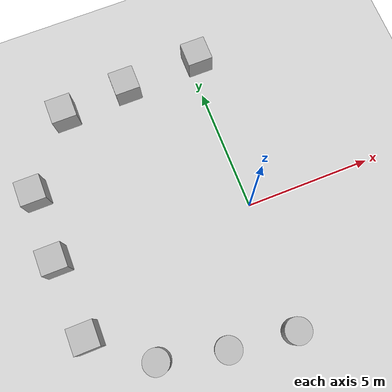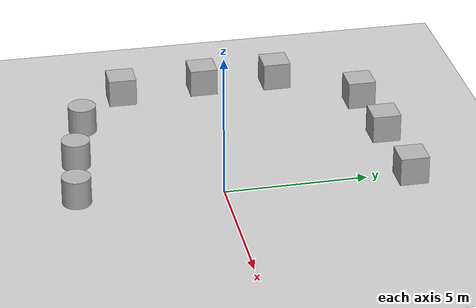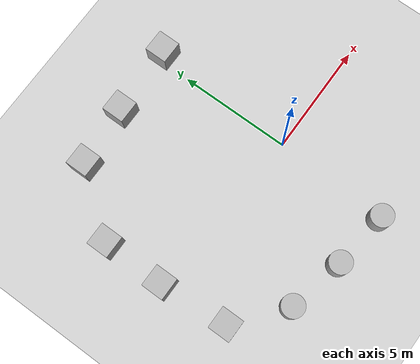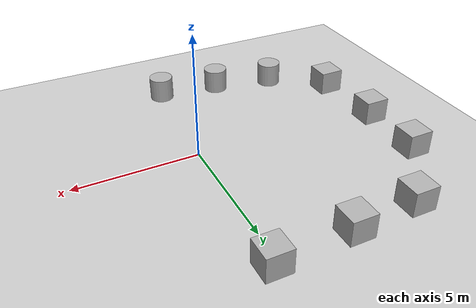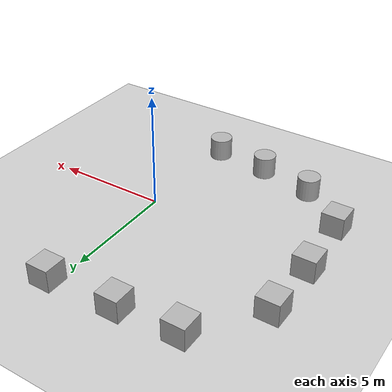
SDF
<sdf version='1.9'>
  <world name='simple'>
    <physics name='1ms' type='ignored'>
      <max_step_size>0.001</max_step_size>
      <real_time_factor>1</real_time_factor>
      <real_time_update_rate>1000</real_time_update_rate>
    </physics>
    <plugin name='gz::sim::systems::Physics' filename='ignition-gazebo-physics-system'/>
    <plugin name='gz::sim::systems::UserCommands' filename='ignition-gazebo-user-commands-system'/>
    <plugin name='gz::sim::systems::SceneBroadcaster' filename='ignition-gazebo-scene-broadcaster-system'/>
    <plugin name='gz::sim::systems::Contact' filename='ignition-gazebo-contact-system'/>
    <plugin name='gz::sim::systems::Sensors' filename='ignition-gazebo-sensors-system'>
      <render_engine>ogre2</render_engine>
    </plugin>
    <gravity>0 0 -9.8</gravity>
    <magnetic_field>6e-06 2.3e-05 -4.2e-05</magnetic_field>
    <atmosphere type='adiabatic'/>
    <scene>
      <ambient>0.4 0.4 0.4 1</ambient>
      <background>0.7 0.7 0.7 1</background>
      <shadows>true</shadows>
    </scene>
    <model name='ground_plane'>
      <static>true</static>
      <link name='link'>
        <collision name='collision'>
          <geometry>
            <plane>
              <normal>0 0 1</normal>
              <size>100 100</size>
            </plane>
          </geometry>
          <surface>
            <friction>
              <ode/>
            </friction>
            <bounce/>
            <contact/>
          </surface>
        </collision>
        <visual name='visual'>
          <geometry>
            <plane>
              <normal>0 0 1</normal>
              <size>100 100</size>
            </plane>
          </geometry>
          <material>
            <ambient>0.8 0.8 0.8 1</ambient>
            <diffuse>0.8 0.8 0.8 1</diffuse>
            <specular>0.8 0.8 0.8 1</specular>
          </material>
        </visual>
        <pose>0 0 0 0 -0 0</pose>
        <inertial>
          <pose>0 0 0 0 -0 0</pose>
          <mass>1</mass>
          <inertia>
            <ixx>1</ixx>
            <ixy>0</ixy>
            <ixz>0</ixz>
            <iyy>1</iyy>
            <iyz>0</iyz>
            <izz>1</izz>
          </inertia>
        </inertial>
        <enable_wind>false</enable_wind>
      </link>
      <pose>0 0 0 0 -0 0</pose>
      <self_collide>false</self_collide>
    </model>
    <model name='box'>
      <pose>0.302278 6.46713 0.5 0 -0 0</pose>
      <link name='box_link'>
        <inertial>
          <inertia>
            <ixx>0.16666</ixx>
            <ixy>0</ixy>
            <ixz>0</ixz>
            <iyy>0.16666</iyy>
            <iyz>0</iyz>
            <izz>0.16666</izz>
          </inertia>
          <mass>1</mass>
          <pose>0 0 0 0 -0 0</pose>
        </inertial>
        <collision name='box_collision'>
          <geometry>
            <box>
              <size>1 1 1</size>
            </box>
          </geometry>
          <surface>
            <friction>
              <ode/>
            </friction>
            <bounce/>
            <contact/>
          </surface>
        </collision>
        <visual name='box_visual'>
          <geometry>
            <box>
              <size>1 1 1</size>
            </box>
          </geometry>
          <material>
            <ambient>0.3 0.3 0.3 1</ambient>
            <diffuse>0.7 0.7 0.7 1</diffuse>
            <specular>1 1 1 1</specular>
          </material>
        </visual>
        <pose>0 0 0 0 -0 0</pose>
        <enable_wind>false</enable_wind>
      </link>
      <static>false</static>
      <self_collide>false</self_collide>
    </model>
    <model name='box_0'>
      <pose>-2.81984 6.3243 0.5 0 -0 0</pose>
      <link name='box_link'>
        <inertial>
          <inertia>
            <ixx>0.16666</ixx>
            <ixy>0</ixy>
            <ixz>0</ixz>
            <iyy>0.16666</iyy>
            <iyz>0</iyz>
            <izz>0.16666</izz>
          </inertia>
          <mass>1</mass>
          <pose>0 0 0 0 -0 0</pose>
        </inertial>
        <collision name='box_collision'>
          <geometry>
            <box>
              <size>1 1 1</size>
            </box>
          </geometry>
          <surface>
            <friction>
              <ode/>
            </friction>
            <bounce/>
            <contact/>
          </surface>
        </collision>
        <visual name='box_visual'>
          <geometry>
            <box>
              <size>1 1 1</size>
            </box>
          </geometry>
          <material>
            <ambient>0.3 0.3 0.3 1</ambient>
            <diffuse>0.7 0.7 0.7 1</diffuse>
            <specular>1 1 1 1</specular>
          </material>
        </visual>
        <pose>0 0 0 0 -0 0</pose>
        <enable_wind>false</enable_wind>
      </link>
      <static>false</static>
      <self_collide>false</self_collide>
    </model>
    <model name='box_1'>
      <pose>-5.5003 6.10691 0.5 0 -0 0</pose>
      <link name='box_link'>
        <inertial>
          <inertia>
            <ixx>0.16666</ixx>
            <ixy>0</ixy>
            <ixz>0</ixz>
            <iyy>0.16666</iyy>
            <iyz>0</iyz>
            <izz>0.16666</izz>
          </inertia>
          <mass>1</mass>
          <pose>0 0 0 0 -0 0</pose>
        </inertial>
        <collision name='box_collision'>
          <geometry>
            <box>
              <size>1 1 1</size>
            </box>
          </geometry>
          <surface>
            <friction>
              <ode/>
            </friction>
            <bounce/>
            <contact/>
          </surface>
        </collision>
        <visual name='box_visual'>
          <geometry>
            <box>
              <size>1 1 1</size>
            </box>
          </geometry>
          <material>
            <ambient>0.3 0.3 0.3 1</ambient>
            <diffuse>0.7 0.7 0.7 1</diffuse>
            <specular>1 1 1 1</specular>
          </material>
        </visual>
        <pose>0 0 0 0 -0 0</pose>
        <enable_wind>false</enable_wind>
      </link>
      <static>false</static>
      <self_collide>false</self_collide>
    </model>
    <model name='box_2'>
      <pose>-7.58545 3.38122 0.5 0 -0 0</pose>
      <link name='box_link'>
        <inertial>
          <inertia>
            <ixx>0.16666</ixx>
            <ixy>0</ixy>
            <ixz>0</ixz>
            <iyy>0.16666</iyy>
            <iyz>0</iyz>
            <izz>0.16666</izz>
          </inertia>
          <mass>1</mass>
          <pose>0 0 0 0 -0 0</pose>
        </inertial>
        <collision name='box_collision'>
          <geometry>
            <box>
              <size>1 1 1</size>
            </box>
          </geometry>
          <surface>
            <friction>
              <ode/>
            </friction>
            <bounce/>
            <contact/>
          </surface>
        </collision>
        <visual name='box_visual'>
          <geometry>
            <box>
              <size>1 1 1</size>
            </box>
          </geometry>
          <material>
            <ambient>0.3 0.3 0.3 1</ambient>
            <diffuse>0.7 0.7 0.7 1</diffuse>
            <specular>1 1 1 1</specular>
          </material>
        </visual>
        <pose>0 0 0 0 -0 0</pose>
        <enable_wind>false</enable_wind>
      </link>
      <static>false</static>
      <self_collide>false</self_collide>
    </model>
    <model name='box_3'>
      <pose>-7.6242 0.624547 0.5 0 -0 0</pose>
      <link name='box_link'>
        <inertial>
          <inertia>
            <ixx>0.16666</ixx>
            <ixy>0</ixy>
            <ixz>0</ixz>
            <iyy>0.16666</iyy>
            <iyz>0</iyz>
            <izz>0.16666</izz>
          </inertia>
          <mass>1</mass>
          <pose>0 0 0 0 -0 0</pose>
        </inertial>
        <collision name='box_collision'>
          <geometry>
            <box>
              <size>1 1 1</size>
            </box>
          </geometry>
          <surface>
            <friction>
              <ode/>
            </friction>
            <bounce/>
            <contact/>
          </surface>
        </collision>
        <visual name='box_visual'>
          <geometry>
            <box>
              <size>1 1 1</size>
            </box>
          </geometry>
          <material>
            <ambient>0.3 0.3 0.3 1</ambient>
            <diffuse>0.7 0.7 0.7 1</diffuse>
            <specular>1 1 1 1</specular>
          </material>
        </visual>
        <pose>0 0 0 0 -0 0</pose>
        <enable_wind>false</enable_wind>
      </link>
      <static>false</static>
      <self_collide>false</self_collide>
    </model>
    <model name='box_4'>
      <pose>-7.40752 -2.43421 0.5 0 -0 0</pose>
      <link name='box_link'>
        <inertial>
          <inertia>
            <ixx>0.16666</ixx>
            <ixy>0</ixy>
            <ixz>0</ixz>
            <iyy>0.16666</iyy>
            <iyz>0</iyz>
            <izz>0.16666</izz>
          </inertia>
          <mass>1</mass>
          <pose>0 0 0 0 -0 0</pose>
        </inertial>
        <collision name='box_collision'>
          <geometry>
            <box>
              <size>1 1 1</size>
            </box>
          </geometry>
          <surface>
            <friction>
              <ode/>
            </friction>
            <bounce/>
            <contact/>
          </surface>
        </collision>
        <visual name='box_visual'>
          <geometry>
            <box>
              <size>1 1 1</size>
            </box>
          </geometry>
          <material>
            <ambient>0.3 0.3 0.3 1</ambient>
            <diffuse>0.7 0.7 0.7 1</diffuse>
            <specular>1 1 1 1</specular>
          </material>
        </visual>
        <pose>0 0 0 0 -0 0</pose>
        <enable_wind>false</enable_wind>
      </link>
      <static>false</static>
      <self_collide>false</self_collide>
    </model>
    <model name='cylinder'>
      <pose>-5.31176 -4.14538 0.5 0 -0 0</pose>
      <link name='cylinder_link'>
        <inertial>
          <inertia>
            <ixx>0.14580000000000001</ixx>
            <ixy>0</ixy>
            <ixz>0</ixz>
            <iyy>0.14580000000000001</iyy>
            <iyz>0</iyz>
            <izz>0.125</izz>
          </inertia>
          <mass>1</mass>
          <pose>0 0 0 0 -0 0</pose>
        </inertial>
        <collision name='cylinder_collision'>
          <geometry>
            <cylinder>
              <radius>0.5</radius>
              <length>1</length>
            </cylinder>
          </geometry>
          <surface>
            <friction>
              <ode/>
            </friction>
            <bounce/>
            <contact/>
          </surface>
        </collision>
        <visual name='cylinder_visual'>
          <geometry>
            <cylinder>
              <radius>0.5</radius>
              <length>1</length>
            </cylinder>
          </geometry>
          <material>
            <ambient>0.3 0.3 0.3 1</ambient>
            <diffuse>0.7 0.7 0.7 1</diffuse>
            <specular>1 1 1 1</specular>
          </material>
        </visual>
        <pose>0 0 0 0 -0 0</pose>
        <enable_wind>false</enable_wind>
      </link>
      <static>false</static>
      <self_collide>false</self_collide>
    </model>
    <model name='cylinder_0'>
      <pose>-2.81984 -4.69308 0.5 0 -0 0</pose>
      <link name='cylinder_link'>
        <inertial>
          <inertia>
            <ixx>0.14580000000000001</ixx>
            <ixy>0</ixy>
            <ixz>0</ixz>
            <iyy>0.14580000000000001</iyy>
            <iyz>0</iyz>
            <izz>0.125</izz>
          </inertia>
          <mass>1</mass>
          <pose>0 0 0 0 -0 0</pose>
        </inertial>
        <collision name='cylinder_collision'>
          <geometry>
            <cylinder>
              <radius>0.5</radius>
              <length>1</length>
            </cylinder>
          </geometry>
          <surface>
            <friction>
              <ode/>
            </friction>
            <bounce/>
            <contact/>
          </surface>
        </collision>
        <visual name='cylinder_visual'>
          <geometry>
            <cylinder>
              <radius>0.5</radius>
              <length>1</length>
            </cylinder>
          </geometry>
          <material>
            <ambient>0.3 0.3 0.3 1</ambient>
            <diffuse>0.7 0.7 0.7 1</diffuse>
            <specular>1 1 1 1</specular>
          </material>
        </visual>
        <pose>0 0 0 0 -0 0</pose>
        <enable_wind>false</enable_wind>
      </link>
      <static>false</static>
      <self_collide>false</self_collide>
    </model>
    <model name='cylinder_1'>
      <pose>-0.299792 -4.99319 0.5 0 -0 0</pose>
      <link name='cylinder_link'>
        <inertial>
          <inertia>
            <ixx>0.14580000000000001</ixx>
            <ixy>0</ixy>
            <ixz>0</ixz>
            <iyy>0.14580000000000001</iyy>
            <iyz>0</iyz>
            <izz>0.125</izz>
          </inertia>
          <mass>1</mass>
          <pose>0 0 0 0 -0 0</pose>
        </inertial>
        <collision name='cylinder_collision'>
          <geometry>
            <cylinder>
              <radius>0.5</radius>
              <length>1</length>
            </cylinder>
          </geometry>
          <surface>
            <friction>
              <ode/>
            </friction>
            <bounce/>
            <contact/>
          </surface>
        </collision>
        <visual name='cylinder_visual'>
          <geometry>
            <cylinder>
              <radius>0.5</radius>
              <length>1</length>
            </cylinder>
          </geometry>
          <material>
            <ambient>0.3 0.3 0.3 1</ambient>
            <diffuse>0.7 0.7 0.7 1</diffuse>
            <specular>1 1 1 1</specular>
          </material>
        </visual>
        <pose>0 0 0 0 -0 0</pose>
        <enable_wind>false</enable_wind>
      </link>
      <static>false</static>
      <self_collide>false</self_collide>
    </model>
    <light name='sun' type='directional'>
      <pose>0 0 10 0 -0 0</pose>
      <cast_shadows>true</cast_shadows>
      <intensity>1</intensity>
      <direction>-0.5 0.1 -0.9</direction>
      <diffuse>0.8 0.8 0.8 1</diffuse>
      <specular>0.2 0.2 0.2 1</specular>
      <attenuation>
        <range>1000</range>
        <linear>0.01</linear>
        <constant>0.90000000000000002</constant>
        <quadratic>0.001</quadratic>
      </attenuation>
      <spot>
        <inner_angle>0</inner_angle>
        <outer_angle>0</outer_angle>
        <falloff>0</falloff>
      </spot>
    </light>
  </world>
</sdf>
